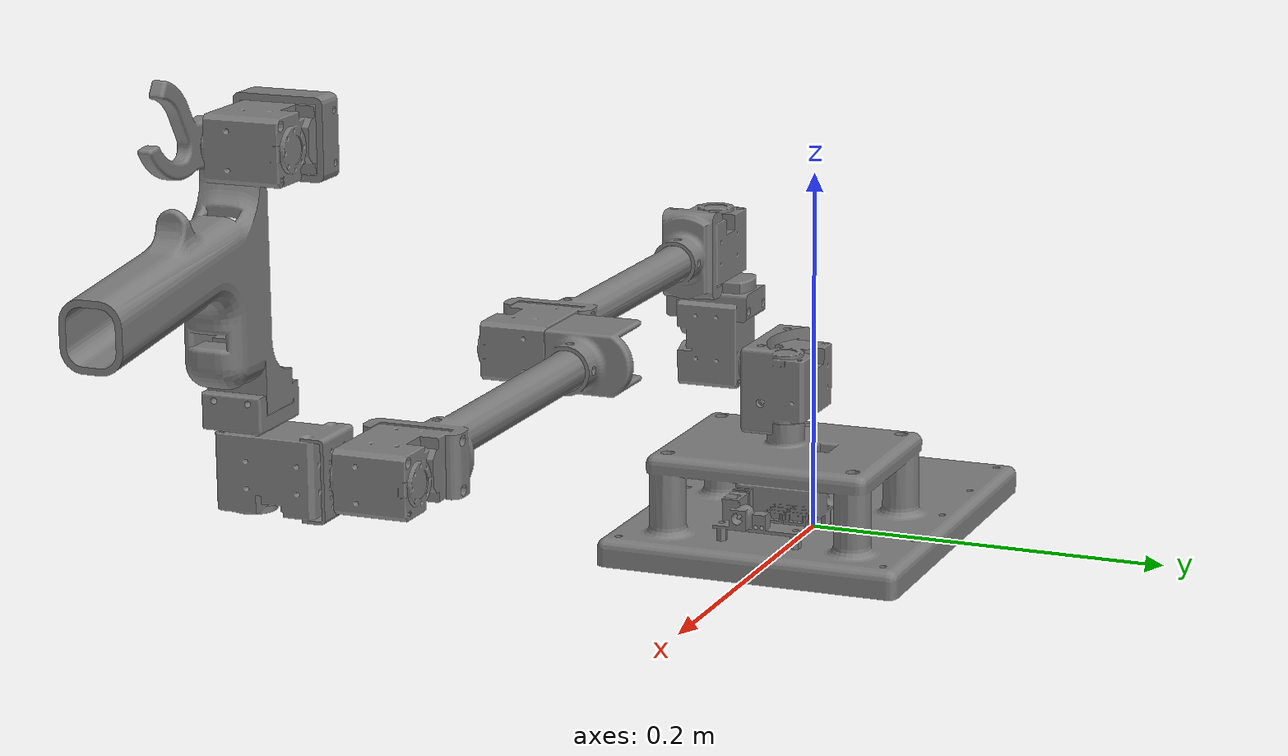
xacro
<?xml version="1.0"?>
<robot name="leader" xmlns:xacro="http://www.ros.org/wiki/xacro">
    <!-- Include urdf -->
    <xacro:include filename="$(find leader_description)/urdf/leader.urdf.xacro" />

    <!-- Include ros2_control hardware (current/torque mode for gravity compensation) -->
    <xacro:include filename="$(find leader_ros2_control)/description/leader.ros2_control.xacro" />

    <!-- Launch arguments -->
    <xacro:arg name="port_name" default="/dev/ttyUSB1" />

    <!-- load xacro file -->
    <xacro:leader />

    <!-- single dynamixel system: all 7 motors, effort command (Goal Current) -->
    <xacro:leader_system name="leader_system" port_name="$(arg port_name)" />
</robot>

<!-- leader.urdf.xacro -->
<robot xmlns:xacro="http://www.ros.org/wiki/xacro">
    <material name="grey">
        <color rgba="0.5 0.5 0.5 1.0" />
    </material>

    <xacro:macro name="leader" >
        <link name="base_link">
            <visual>
                <geometry>
                    <mesh filename="package://leader_description/meshes/Base_link.STL" />
                </geometry>
                <material name="grey" />
            </visual>
            <collision>
                <geometry>
                    <mesh filename="package://leader_description/meshes/Base_link.STL" />
                </geometry>
            </collision>
            <inertial>
                <mass value="0.760315" />
                <origin xyz="0.011296 -0.000093 0.017421" rpy="0 0 0" />
                <inertia ixx="0.001892" ixy="-0.000004" ixz="0.000251"
                        iyy="0.003009" iyz="-0.000002"
                        izz="0.004372" />
            </inertial>
        </link>

        <joint name="shoulder_yaw_joint" type="revolute">
            <parent link="base_link" />
            <child link="shoulder_link" />
            <origin xyz="0.045 0.000 0.073" rpy="0 0 0" />
            <axis xyz="0 0 -1" />
            <limit effort="10" velocity="3.0" lower="-3.14" upper="3.14" />
        </joint>

        <link name="shoulder_link">
            <visual>
                <geometry>
                    <mesh filename="package://leader_description/meshes/Shoulder_link.STL" />
                </geometry>
                <material name="grey" />
            </visual>
            <collision>
                <geometry>
                    <mesh filename="package://leader_description/meshes/Shoulder_link.STL" />
                </geometry>
            </collision>
            <inertial>
                <mass value="0.067330" />
                <origin xyz="-0.011831 -0.004951 0.018905" rpy="0 0 0" />
                <inertia ixx="0.000015" ixy="0.000000" ixz="0.0000000"
                        iyy="0.000026" iyz="0.000000"
                        izz="0.000024" />
            </inertial>
        </link>

        <joint name="upper_shoulder_pitch_joint" type="revolute">
            <parent link="shoulder_link" />
            <child link="upper_shoulder_link" />
            <origin xyz="-0.012 -0.026 0.026" rpy="0 0 0" />
            <axis xyz="0 -1 0" />
            <limit effort="10" velocity="3.0" lower="-1.70" upper="1.70" />
        </joint>

        <link name="upper_shoulder_link">
            <visual>
                <geometry>
                    <mesh filename="package://leader_description/meshes/Upper_shoulder_link.STL" />
                </geometry>
                <material name="grey" />
            </visual>
            <collision>
                <geometry>
                    <mesh filename="package://leader_description/meshes/Upper_shoulder_link.STL" />
                </geometry>
            </collision>
            <inertial>
                <mass value="0.060696" />
                <origin xyz="0.000023 -0.018562 0.018781" rpy="0 0 0" />
                <inertia ixx="0.000025" ixy="0.000000" ixz="0.000000"
                        iyy="0.000021" iyz="0.000000"
                        izz="0.000012" />
            </inertial>
        </link>

        <joint name="arm_yaw_joint" type="revolute">
            <parent link="upper_shoulder_link" />
            <child link="arm_link" />
            <origin xyz="0.000 -0.019 0.048" rpy="0 0 0" />
            <axis xyz="0 0 -1" />
            <limit effort="10" velocity="3.0" lower="-3.14" upper="3.14" />
        </joint>

        <link name="arm_link">
            <visual>
                <geometry>
                    <mesh filename="package://leader_description/meshes/Arm_link.STL" />
                </geometry>
                <material name="grey" />
            </visual>
            <collision>
                <geometry>
                    <mesh filename="package://leader_description/meshes/Arm_link.STL" />
                </geometry>
            </collision>
            <inertial>
                <mass value="0.161017" />
                <origin xyz="0.127050 0.000149 0.018851" rpy="0 0 0" />
                <inertia ixx="0.000024" ixy="0.000003" ixz="0.000003"
                        iyy="0.001502" iyz="0.000000"
                        izz="0.001502" />
            </inertial>
        </link>

        <joint name="forearm_pitch_joint" type="revolute">
            <parent link="arm_link" />
            <child link="forearm_link" />
            <origin xyz="0.254 0.019 0.019" rpy="0 0 0" />
            <axis xyz="0 -1 0" />
            <limit effort="10" velocity="3.0" lower="-2.33" upper="2.4" />
        </joint>

        <link name="forearm_link">
            <visual>
                <geometry>
                    <mesh filename="package://leader_description/meshes/Forearm_link.STL" />
                </geometry>
                <material name="grey" />
            </visual>
            <collision>
                <geometry>
                    <mesh filename="package://leader_description/meshes/Forearm_link.STL" />
                </geometry>
            </collision>
            <inertial>
                <mass value="0.126166" />
                <origin xyz="0.137015 0.016972 -0.000011" rpy="0 0 0" />
                <inertia ixx="0.000018" ixy="0.000004" ixz="0.000000"
                        iyy="0.000810" iyz="0.000000"
                        izz="0.000814" />
            </inertial>
        </link>

        <joint name="wrist_pitch_joint" type="revolute">
            <parent link="forearm_link" />
            <child link="wrist_link" />
            <origin xyz="0.225 -0.002 0.000" rpy="0 0 0" />
            <axis xyz="0 1 0" />
            <limit effort="10" velocity="3.0" lower="-1.86" upper="1.69" />
        </joint>

        <link name="wrist_link">
            <visual>
                <geometry>
                    <mesh filename="package://leader_description/meshes/Wrist_link.STL" />
                </geometry>
                <material name="grey" />
            </visual>
            <collision>
                <geometry>
                    <mesh filename="package://leader_description/meshes/Wrist_link.STL" />
                </geometry>
            </collision>
            <inertial>
                <mass value="0.047237" />
                <origin xyz="-0.000029 -0.027699 0.000563" rpy="0 0 0" />
                <inertia ixx="0.000015" ixy="0.000000" ixz="0.000000"
                        iyy="0.000008" iyz="0.000000"
                        izz="0.000013" />
            </inertial>
        </link>

        <joint name="palm_yaw_joint" type="revolute">
            <parent link="wrist_link" />
            <child link="palm_link" />
            <origin xyz="0.000 -0.041 0.019" rpy="0 0 0" />
            <axis xyz="0 0 1" />
            <limit effort="10" velocity="3.0" lower="-3.14" upper="3.14" />
        </joint>

        <link name="palm_link">
            <visual>
                <geometry>
                    <mesh filename="package://leader_description/meshes/Palm_link.STL" />
                </geometry>
                <material name="grey" />
            </visual>
            <collision>
                <geometry>
                    <mesh filename="package://leader_description/meshes/Palm_link.STL" />
                </geometry>
            </collision>
            <inertial>
                <mass value="0.141693" />
                <origin xyz="0.028024 0.008156 0.079739" rpy="0 0 0" />
                <inertia ixx="0.000288" ixy="-0.000010" ixz="0.000010"
                        iyy="0.000385" iyz="0.000054"
                        izz="0.000158" />
            </inertial>
        </link>

        <joint name="gripper_prismatic_joint" type="revolute">
            <parent link="palm_link" />
            <child link="gripper_link" />
            <origin xyz="0.033 0.004 0.127" rpy="0 0 0" />
            <axis xyz="0 -1 0" />
            <limit effort="1" velocity="4.8" lower="-0.4" upper="1" />
        </joint>

        <link name="gripper_link">
            <visual>
                <geometry>
                    <mesh filename="package://leader_description/meshes/Gripper_link.STL" />
                </geometry>
                <material name="grey" />
            </visual>
            <collision>
                <geometry>
                    <mesh filename="package://leader_description/meshes/Gripper_link.STL" />
                </geometry>
            </collision>
            <inertial>
                <mass value="0.006201" />
                <origin xyz="0.017052 -0.003500 0.004139" rpy="0 0 0" />
                <inertia ixx="0.000001" ixy="0.000000" ixz="0.000000"
                        iyy="0.000002" iyz="0.000000"
                        izz="0.000001" />
            </inertial>
        </link>

        <joint name="ee_joint" type="fixed">
            <parent link="palm_link" />
            <child link="ee_link" />
            <origin xyz="0.060 0.000 0.135" rpy="0 0 0" />
        </joint>

        <link name="ee_link" />

    </xacro:macro>

</robot>
